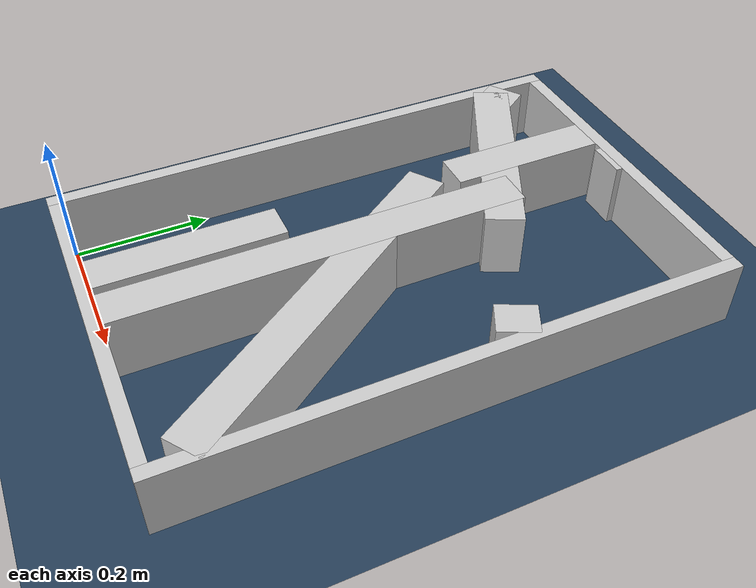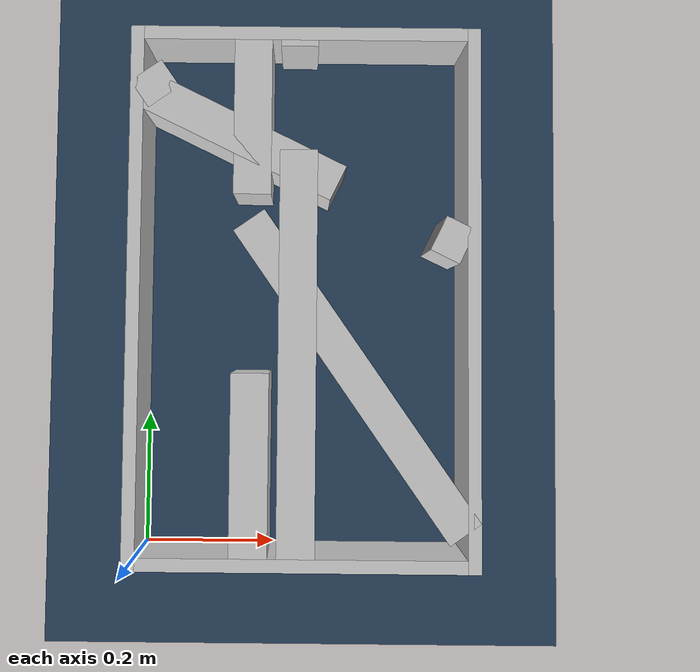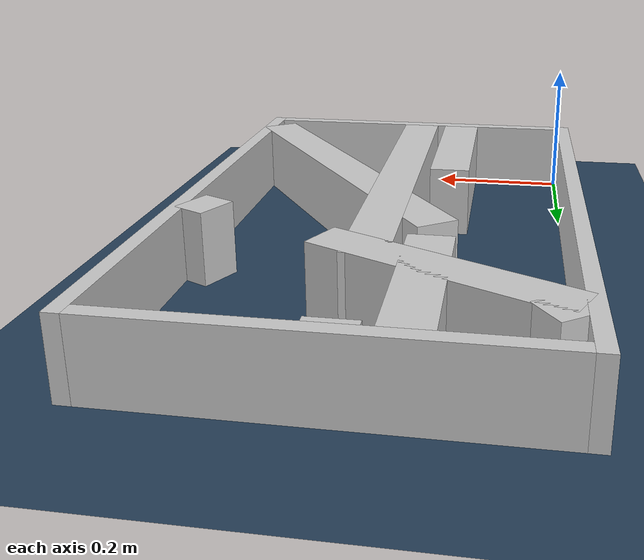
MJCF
<?xml version="1.0" ?>
<mujoco model="generated_real_template">
  <compiler angle="degree"/>
  <option timestep="0.002" integrator="implicitfast" iterations="100" cone="elliptic"/>
  <default>
    <geom density="1"/>
  </default>
  <asset>
    <texture builtin="gradient" height="3072" rgb1="0.3 0.5 0.7" rgb2="0 0 0" type="skybox" width="512"/>
    <texture builtin="checker" height="300" mark="edge" markrgb="0.8 0.8 0.8" name="groundplane" rgb1="0.2 0.3 0.4" rgb2="0.1 0.2 0.3" type="2d" width="300"/>
    <material name="groundplane" reflectance="0.2" texrepeat="5 5" texture="groundplane" texuniform="true"/>
  </asset>
  <worldbody>
    <light dir="0 0 -1" directional="true" pos="0 0 1.5"/>
    <geom name="floor" type="plane" condim="4" friction="0.5 0.005 0.001" material="groundplane" size="0 0 0.05"/>
    <body name="walls">
      <geom name="wall_boundary_left" type="box" condim="4" friction="1.0 0.005 0.0001" rgba="0.8 0.8 0.8 1" pos="-0.010000 0.387500 0.050000" euler="0 0 0.000000" size="0.010000 0.407500 0.050000"/>
      <geom name="wall_boundary_right" type="box" condim="4" friction="1.0 0.005 0.0001" rgba="0.8 0.8 0.8 1" pos="0.500000 0.387500 0.050000" euler="0 0 0.000000" size="0.010000 0.407500 0.050000"/>
      <geom name="wall_boundary_bottom" type="box" condim="4" friction="1.0 0.005 0.0001" rgba="0.8 0.8 0.8 1" pos="0.245000 -0.010000 0.050000" euler="0 0 0.000000" size="0.245000 0.010000 0.050000"/>
      <geom name="wall_boundary_top" type="box" condim="4" friction="1.0 0.005 0.0001" rgba="0.8 0.8 0.8 1" pos="0.245000 0.785000 0.050000" euler="0 0 0.000000" size="0.245000 0.010000 0.050000"/>
      <geom name="wall_inner_1_1" type="box" condim="4" friction="1.0 0.005 0.0001" rgba="0.8 0.8 0.8 1" pos="0.165964 0.135760 0.050000" euler="0 0 90.000000" size="0.135760 0.028500 0.050000"/>
      <geom name="wall_inner_1_2" type="box" condim="4" friction="1.0 0.005 0.0001" rgba="0.8 0.8 0.8 1" pos="0.165964 0.657253 0.050000" euler="0 0 90.000000" size="0.117747 0.028500 0.050000"/>
      <geom name="wall_inner_2_1" type="box" condim="4" friction="1.0 0.005 0.0001" rgba="0.8 0.8 0.8 1" pos="0.468354 0.473105 0.050000" euler="0 0 154.216045" size="0.024039 0.028500 0.050000"/>
      <geom name="wall_inner_2_2" type="box" condim="4" friction="1.0 0.005 0.0001" rgba="0.8 0.8 0.8 1" pos="0.147759 0.627976 0.050000" euler="0 0 154.216045" size="0.164096 0.028500 0.050000"/>
      <geom name="wall_inner_3_1" type="box" condim="4" friction="1.0 0.005 0.0001" rgba="0.8 0.8 0.8 1" pos="0.235953 0.303750 0.050000" euler="0 0 90.000000" size="0.303750 0.028500 0.050000"/>
      <geom name="wall_inner_3_2" type="box" condim="4" friction="1.0 0.005 0.0001" rgba="0.8 0.8 0.8 1" pos="0.235953 0.770257 0.050000" euler="0 0 90.000000" size="0.004743 0.028500 0.050000"/>
      <geom name="wall_inner_4_1" type="box" condim="4" friction="1.0 0.005 0.0001" rgba="0.8 0.8 0.8 1" pos="0.017435 0.706054 0.050000" euler="0 0 -54.944186" size="0.024555 0.028500 0.050000"/>
      <geom name="wall_inner_4_2" type="box" condim="4" friction="1.0 0.005 0.0001" rgba="0.8 0.8 0.8 1" pos="0.324280 0.268741 0.050000" euler="0 0 -54.944186" size="0.282724 0.028500 0.050000"/>
    </body>
  </worldbody>
</mujoco>
